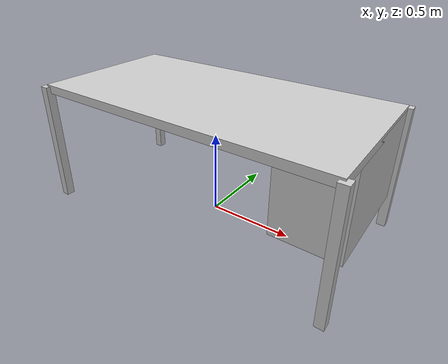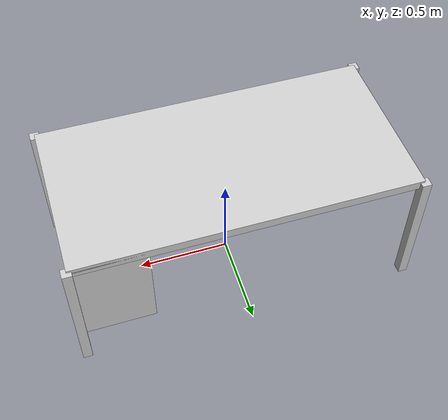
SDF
<?xml version="1.0"?>
<sdf version="1.6">
  <model name="table_ahrend_180x90x75_with_drawers">
    <link name="1_link">
      <collision name="1_col">
        <geometry>
          <box>
            <size>1.8 0.9 0.05</size>
          </box>
        </geometry>
      </collision>
      <visual name="1_vis">
        <geometry>
          <box>
            <size>1.8 0.9 0.05</size>
          </box>
        </geometry>
        <material>
          <ambient>0.8 0.8 0.8 1</ambient>
        </material>
      </visual>
      <pose>0.0 0.0 0.725 0 0 0</pose>
    </link>
    <link name="2_link">
      <collision name="2_col">
        <geometry>
          <box>
            <size>0.05 0.05 0.74</size>
          </box>
        </geometry>
      </collision>
      <visual name="2_vis">
        <geometry>
          <box>
            <size>0.05 0.05 0.74</size>
          </box>
        </geometry>
        <material>
          <ambient>0.8 0.8 0.8 1</ambient>
        </material>
      </visual>
      <pose>-0.9 -0.45 0.37 0 0 0</pose>
    </link>
    <link name="3_link">
      <collision name="3_col">
        <geometry>
          <box>
            <size>0.05 0.05 0.74</size>
          </box>
        </geometry>
      </collision>
      <visual name="3_vis">
        <geometry>
          <box>
            <size>0.05 0.05 0.74</size>
          </box>
        </geometry>
        <material>
          <ambient>0.8 0.8 0.8 1</ambient>
        </material>
      </visual>
      <pose>-0.9 0.45 0.37 0 0 0</pose>
    </link>
    <link name="4_link">
      <collision name="4_col">
        <geometry>
          <box>
            <size>0.05 0.05 0.74</size>
          </box>
        </geometry>
      </collision>
      <visual name="4_vis">
        <geometry>
          <box>
            <size>0.05 0.05 0.74</size>
          </box>
        </geometry>
        <material>
          <ambient>0.8 0.8 0.8 1</ambient>
        </material>
      </visual>
      <pose>0.9 -0.45 0.37 0 0 0</pose>
    </link>
    <link name="5_link">
      <collision name="5_col">
        <geometry>
          <box>
            <size>0.05 0.05 0.74</size>
          </box>
        </geometry>
      </collision>
      <visual name="5_vis">
        <geometry>
          <box>
            <size>0.05 0.05 0.74</size>
          </box>
        </geometry>
        <material>
          <ambient>0.8 0.8 0.8 1</ambient>
        </material>
      </visual>
      <pose>0.9 0.45 0.37 0 0 0</pose>
    </link>
    <link name="6_link">
      <collision name="6_col">
        <geometry>
          <box>
            <size>0.39 0.72 0.53</size>
          </box>
        </geometry>
      </collision>
      <visual name="6_vis">
        <geometry>
          <box>
            <size>0.39 0.72 0.53</size>
          </box>
        </geometry>
        <material>
          <ambient>0.8 0.8 0.8 1</ambient>
        </material>
      </visual>
      <pose>0.705 0.09 0.465 0 0 0</pose>
    </link>
    <static>true</static>
  </model>
</sdf>
